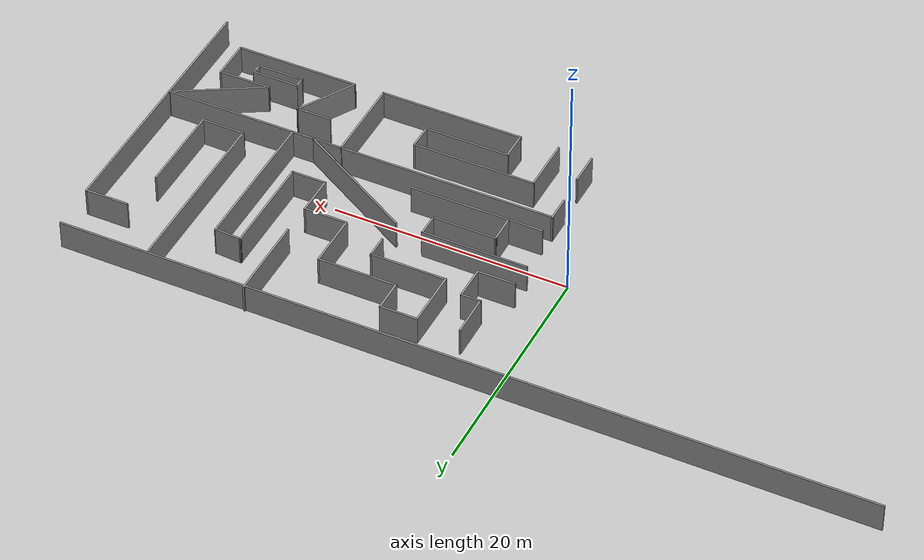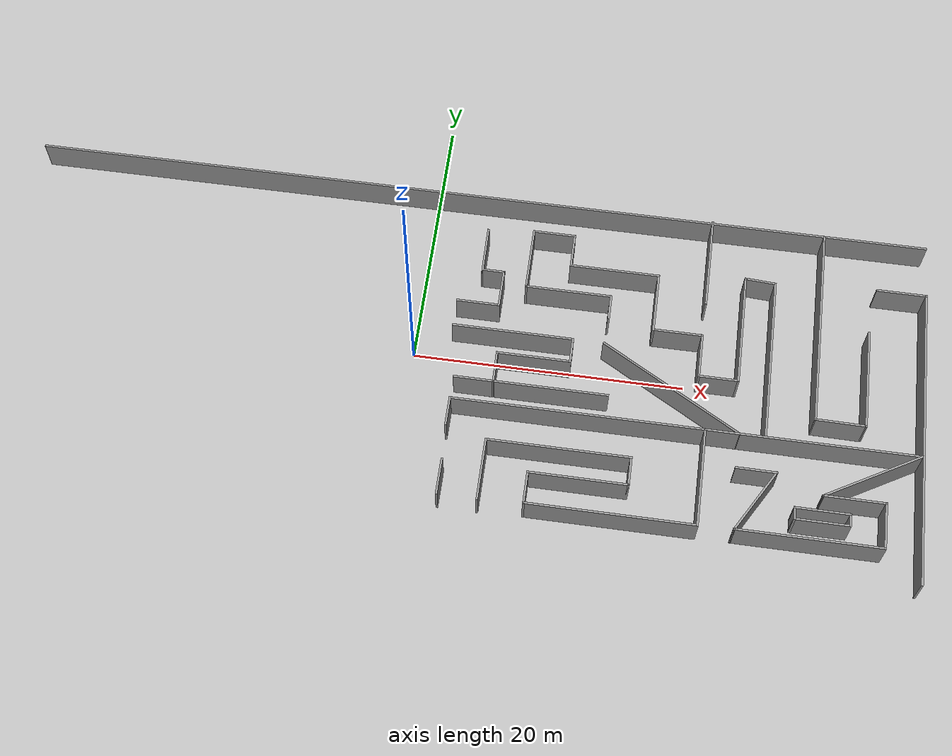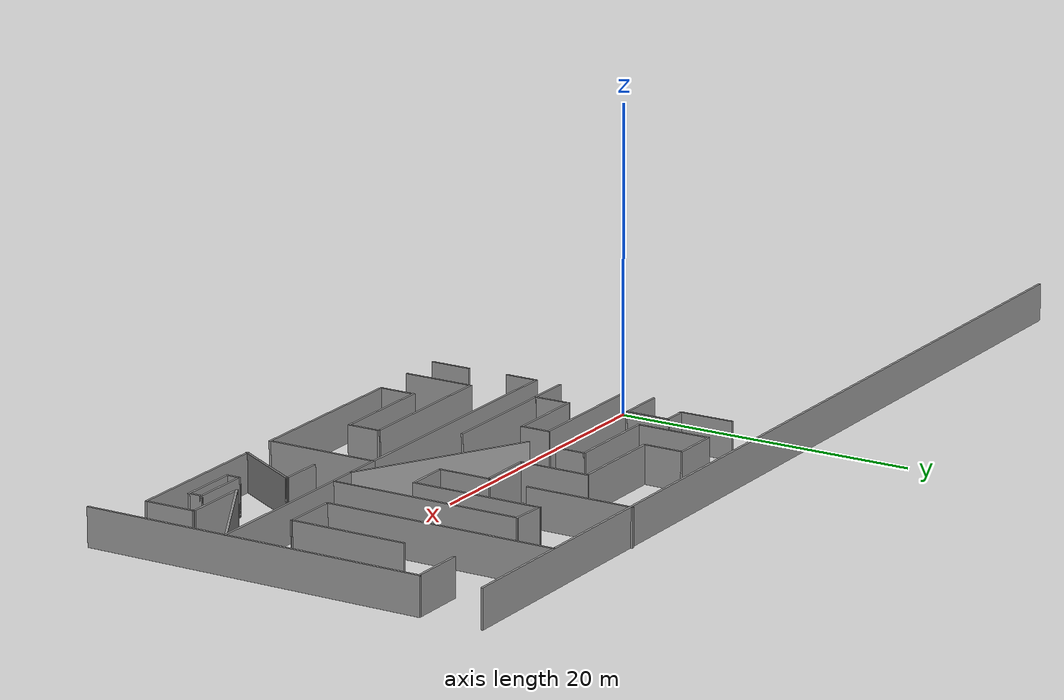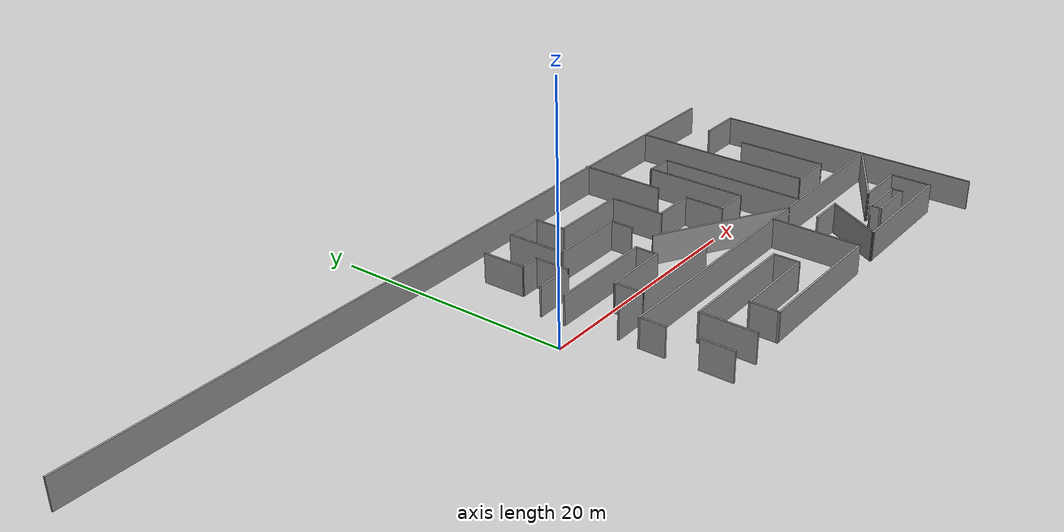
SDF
<sdf version="1.6">
 <model name="maze">
  <pose>0.673756 -0.372053 0 0 -0 0</pose>
  <link name="Wall_101">
   <collision name="Wall_101_Collision">
    <geometry><box><size>0.15 0.15 2.5</size></box></geometry>
    <pose>0 0 1.25 0 -0 0</pose>
   </collision>
   <visual name="Wall_101_Visual">
    <pose>0 0 1.25 0 -0 0</pose>
    <geometry><box><size>0.15 0.15 2.5</size></box></geometry>
    <material>
     <script><uri>file://media/materials/scripts/gazebo.material</uri><name>Gazebo/Grey</name></script>
     <ambient>1 1 1 1</ambient>
    </material>
   </visual>
   <pose>27.6431 -9.00348 0 0 -0 0</pose>
  </link>
  <link name="Wall_108">
   <collision name="Wall_108_Collision">
    <geometry><box><size>4 0.15 2.5</size></box></geometry>
    <pose>0 0 1.25 0 -0 0</pose>
   </collision>
   <visual name="Wall_108_Visual">
    <pose>0 0 1.25 0 -0 0</pose>
    <geometry><box><size>4 0.15 2.5</size></box></geometry>
    <material>
     <script><uri>file://media/materials/scripts/gazebo.material</uri><name>Gazebo/Grey</name></script>
     <ambient>1 1 1 1</ambient>
    </material>
   </visual>
   <pose>29.5681 -9.00348 0 0 -0 0</pose>
  </link>
  <link name="Wall_109">
   <collision name="Wall_109_Collision">
    <geometry><box><size>1 0.15 2.5</size></box></geometry>
    <pose>0 0 1.25 0 -0 0</pose>
   </collision>
   <visual name="Wall_109_Visual">
    <pose>0 0 1.25 0 -0 0</pose>
    <geometry><box><size>1 0.15 2.5</size></box></geometry>
    <material>
     <script><uri>file://media/materials/scripts/gazebo.material</uri><name>Gazebo/Grey</name></script>
     <ambient>1 1 1 1</ambient>
    </material>
   </visual>
   <pose>31.4931 -9.42848 0 0 0 -1.5708</pose>
  </link>
  <link name="Wall_110">
   <collision name="Wall_110_Collision">
    <geometry><box><size>4 0.15 2.5</size></box></geometry>
    <pose>0 0 1.25 0 -0 0</pose>
   </collision>
   <visual name="Wall_110_Visual">
    <pose>0 0 1.25 0 -0 0</pose>
    <geometry><box><size>4 0.15 2.5</size></box></geometry>
    <material>
     <script><uri>file://media/materials/scripts/gazebo.material</uri><name>Gazebo/Grey</name></script>
     <ambient>1 1 1 1</ambient>
    </material>
   </visual>
   <pose>29.5681 -9.85348 0 0 -0 3.14159</pose>
  </link>
  <link name="Wall_111">
   <collision name="Wall_111_Collision">
    <geometry><box><size>1 0.15 2.5</size></box></geometry>
    <pose>0 0 1.25 0 -0 0</pose>
   </collision>
   <visual name="Wall_111_Visual">
    <pose>0 0 1.25 0 -0 0</pose>
    <geometry><box><size>1 0.15 2.5</size></box></geometry>
    <material>
     <script><uri>file://media/materials/scripts/gazebo.material</uri><name>Gazebo/Grey</name></script>
     <ambient>1 1 1 1</ambient>
    </material>
   </visual>
   <pose>27.6431 -9.42848 0 0 -0 1.5708</pose>
  </link>
  <link name="Wall_124">
   <collision name="Wall_124_Collision">
    <geometry><box><size>3.64965 0.15 2.5</size></box></geometry>
    <pose>0 0 1.25 0 -0 0</pose>
   </collision>
   <visual name="Wall_124_Visual">
    <pose>0 0 1.25 0 -0 0</pose>
    <geometry><box><size>3.64965 0.15 2.5</size></box></geometry>
    <material>
     <script><uri>file://media/materials/scripts/gazebo.material</uri><name>Gazebo/Grey</name></script>
     <ambient>1 1 1 1</ambient>
    </material>
   </visual>
   <pose>3.52079 8.72354 0 0 0 -1.56012</pose>
  </link>
  <link name="Wall_125">
   <collision name="Wall_125_Collision">
    <geometry><box><size>1.75 0.15 2.5</size></box></geometry>
    <pose>0 0 1.25 0 -0 0</pose>
   </collision>
   <visual name="Wall_125_Visual">
    <pose>0 0 1.25 0 -0 0</pose>
    <geometry><box><size>1.75 0.15 2.5</size></box></geometry>
    <material>
     <script><uri>file://media/materials/scripts/gazebo.material</uri><name>Gazebo/Grey</name></script>
     <ambient>1 1 1 1</ambient>
    </material>
   </visual>
   <pose>4.33947 6.97382 0 0 -0 0</pose>
  </link>
  <link name="Wall_126">
   <collision name="Wall_126_Collision">
    <geometry><box><size>3 0.15 2.5</size></box></geometry>
    <pose>0 0 1.25 0 -0 0</pose>
   </collision>
   <visual name="Wall_126_Visual">
    <pose>0 0 1.25 0 -0 0</pose>
    <geometry><box><size>3 0.15 2.5</size></box></geometry>
    <material>
     <script><uri>file://media/materials/scripts/gazebo.material</uri><name>Gazebo/Grey</name></script>
     <ambient>1 1 1 1</ambient>
    </material>
   </visual>
   <pose>5.13947 5.54882 0 0 0 -1.5708</pose>
  </link>
  <link name="Wall_127">
   <collision name="Wall_127_Collision">
    <geometry><box><size>3.25 0.15 2.5</size></box></geometry>
    <pose>0 0 1.25 0 -0 0</pose>
   </collision>
   <visual name="Wall_127_Visual">
    <pose>0 0 1.25 0 -0 0</pose>
    <geometry><box><size>3.25 0.15 2.5</size></box></geometry>
    <material>
     <script><uri>file://media/materials/scripts/gazebo.material</uri><name>Gazebo/Grey</name></script>
     <ambient>1 1 1 1</ambient>
    </material>
   </visual>
   <pose>3.58947 4.12382 0 0 -0 3.14159</pose>
  </link>
  <link name="Wall_129">
   <collision name="Wall_129_Collision">
    <geometry><box><size>9 0.15 2.5</size></box></geometry>
    <pose>0 0 1.25 0 -0 0</pose>
   </collision>
   <visual name="Wall_129_Visual">
    <pose>0 0 1.25 0 -0 0</pose>
    <geometry><box><size>9 0.15 2.5</size></box></geometry>
    <material>
     <script><uri>file://media/materials/scripts/gazebo.material</uri><name>Gazebo/Grey</name></script>
     <ambient>1 1 1 1</ambient>
    </material>
   </visual>
   <pose>6.46447 2.02382 0 0 -0 0</pose>
  </link>
  <link name="Wall_130">
   <collision name="Wall_130_Collision">
    <geometry><box><size>2 0.15 2.5</size></box></geometry>
    <pose>0 0 1.25 0 -0 0</pose>
   </collision>
   <visual name="Wall_130_Visual">
    <pose>0 0 1.25 0 -0 0</pose>
    <geometry><box><size>2 0.15 2.5</size></box></geometry>
    <material>
     <script><uri>file://media/materials/scripts/gazebo.material</uri><name>Gazebo/Grey</name></script>
     <ambient>1 1 1 1</ambient>
    </material>
   </visual>
   <pose>10.8895 1.09882 0 0 0 -1.5708</pose>
  </link>
  <link name="Wall_131">
   <collision name="Wall_131_Collision">
    <geometry><box><size>5.5 0.15 2.5</size></box></geometry>
    <pose>0 0 1.25 0 -0 0</pose>
   </collision>
   <visual name="Wall_131_Visual">
    <pose>0 0 1.25 0 -0 0</pose>
    <geometry><box><size>5.5 0.15 2.5</size></box></geometry>
    <material>
     <script><uri>file://media/materials/scripts/gazebo.material</uri><name>Gazebo/Grey</name></script>
     <ambient>1 1 1 1</ambient>
    </material>
   </visual>
   <pose>8.21447 0.173816 0 0 -0 3.14159</pose>
  </link>
  <link name="Wall_132">
   <collision name="Wall_132_Collision">
    <geometry><box><size>2.50126 0.15 2.5</size></box></geometry>
    <pose>0 0 1.25 0 -0 0</pose>
   </collision>
   <visual name="Wall_132_Visual">
    <pose>0 0 1.25 0 -0 0</pose>
    <geometry><box><size>2.50126 0.15 2.5</size></box></geometry>
    <material>
     <script><uri>file://media/materials/scripts/gazebo.material</uri><name>Gazebo/Grey</name></script>
     <ambient>1 1 1 1</ambient>
    </material>
   </visual>
   <pose>5.55875 -1.00118 0 0 0 -1.55439</pose>
  </link>
  <link name="Wall_133">
   <collision name="Wall_133_Collision">
    <geometry><box><size>8.46145 0.15 2.5</size></box></geometry>
    <pose>0 0 1.25 0 -0 0</pose>
   </collision>
   <visual name="Wall_133_Visual">
    <pose>0 0 1.25 0 -0 0</pose>
    <geometry><box><size>8.46145 0.15 2.5</size></box></geometry>
    <material>
     <script><uri>file://media/materials/scripts/gazebo.material</uri><name>Gazebo/Grey</name></script>
     <ambient>1 1 1 1</ambient>
    </material>
   </visual>
   <pose>9.73375 -2.17618 0 0 -0 0</pose>
  </link>
  <link name="Wall_151">
   <collision name="Wall_151_Collision">
    <geometry><box><size>2.75 0.15 2.5</size></box></geometry>
    <pose>0 0 1.25 0 -0 0</pose>
   </collision>
   <visual name="Wall_151_Visual">
    <pose>0 0 1.25 0 -0 0</pose>
    <geometry><box><size>2.75 0.15 2.5</size></box></geometry>
    <material>
     <script><uri>file://media/materials/scripts/gazebo.material</uri><name>Gazebo/Grey</name></script>
     <ambient>1 1 1 1</ambient>
    </material>
   </visual>
   <pose>2.81078 -10.0807 0 0 0 -1.5708</pose>
  </link>
  <link name="Wall_159">
   <collision name="Wall_159_Collision">
    <geometry><box><size>12 0.15 2.5</size></box></geometry>
    <pose>0 0 1.25 0 -0 0</pose>
   </collision>
   <visual name="Wall_159_Visual">
    <pose>0 0 1.25 0 -0 0</pose>
    <geometry><box><size>12 0.15 2.5</size></box></geometry>
    <material>
     <script><uri>file://media/materials/scripts/gazebo.material</uri><name>Gazebo/Grey</name></script>
     <ambient>1 1 1 1</ambient>
    </material>
   </visual>
   <pose>18.3267 -0.947598 0 0 0 -0.523599</pose>
  </link>
  <link name="Wall_167">
   <collision name="Wall_167_Collision">
    <geometry><box><size>3 0.15 2.5</size></box></geometry>
    <pose>0 0 1.25 0 -0 0</pose>
   </collision>
   <visual name="Wall_167_Visual">
    <pose>0 0 1.25 0 -0 0</pose>
    <geometry><box><size>3 0.15 2.5</size></box></geometry>
    <material>
     <script><uri>file://media/materials/scripts/gazebo.material</uri><name>Gazebo/Grey</name></script>
     <ambient>1 1 1 1</ambient>
    </material>
   </visual>
   <pose>4.15302 -2.17618 0 0 -0 3.14159</pose>
  </link>
  <link name="Wall_183">
   <collision name="Wall_183_Collision">
    <geometry><box><size>12.75 0.15 2.5</size></box></geometry>
    <pose>0 0 1.25 0 -0 0</pose>
   </collision>
   <visual name="Wall_183_Visual">
    <pose>0 0 1.25 0 -0 0</pose>
    <geometry><box><size>12.75 0.15 2.5</size></box></geometry>
    <material>
     <script><uri>file://media/materials/scripts/gazebo.material</uri><name>Gazebo/Grey</name></script>
     <ambient>1 1 1 1</ambient>
    </material>
   </visual>
   <pose>25.3105 2.45804 0 0 -0 1.5708</pose>
  </link>
  <link name="Wall_185">
   <collision name="Wall_185_Collision">
    <geometry><box><size>15.5 0.15 2.5</size></box></geometry>
    <pose>0 0 1.25 0 -0 0</pose>
   </collision>
   <visual name="Wall_185_Visual">
    <pose>0 0 1.25 0 -0 0</pose>
    <geometry><box><size>15.5 0.15 2.5</size></box></geometry>
    <material>
     <script><uri>file://media/materials/scripts/gazebo.material</uri><name>Gazebo/Grey</name></script>
     <ambient>1 1 1 1</ambient>
    </material>
   </visual>
   <pose>28.7569 5.64093 0 0 0 -1.5708</pose>
  </link>
  <link name="Wall_186">
   <collision name="Wall_186_Collision">
    <geometry><box><size>3.75 0.15 2.5</size></box></geometry>
    <pose>0 0 1.25 0 -0 0</pose>
   </collision>
   <visual name="Wall_186_Visual">
    <pose>0 0 1.25 0 -0 0</pose>
    <geometry><box><size>3.75 0.15 2.5</size></box></geometry>
    <material>
     <script><uri>file://media/materials/scripts/gazebo.material</uri><name>Gazebo/Grey</name></script>
     <ambient>1 1 1 1</ambient>
    </material>
   </visual>
   <pose>30.5569 -2.0526 0 0 0 -0.010294</pose>
  </link>
  <link name="Wall_189">
   <collision name="Wall_189_Collision">
    <geometry><box><size>3.75 0.15 2.5</size></box></geometry>
    <pose>0 0 1.25 0 -0 0</pose>
   </collision>
   <visual name="Wall_189_Visual">
    <pose>0 0 1.25 0 -0 0</pose>
    <geometry><box><size>3.75 0.15 2.5</size></box></geometry>
    <material>
     <script><uri>file://media/materials/scripts/gazebo.material</uri><name>Gazebo/Grey</name></script>
     <ambient>1 1 1 1</ambient>
    </material>
   </visual>
   <pose>34.6633 9.24997 0 0 -0 3.14159</pose>
  </link>
  <link name="Wall_191">
   <collision name="Wall_191_Collision">
    <geometry><box><size>7.75 0.15 2.5</size></box></geometry>
    <pose>0 0 1.25 0 -0 0</pose>
   </collision>
   <visual name="Wall_191_Visual">
    <pose>0 0 1.25 0 -0 0</pose>
    <geometry><box><size>7.75 0.15 2.5</size></box></geometry>
    <material>
     <script><uri>file://media/materials/scripts/gazebo.material</uri><name>Gazebo/Grey</name></script>
     <ambient>1 1 1 1</ambient>
    </material>
   </visual>
   <pose>32.3569 1.72887 0 0 -0 1.5708</pose>
  </link>
  <link name="Wall_197">
   <collision name="Wall_197_Collision">
    <geometry><box><size>2 0.15 2.5</size></box></geometry>
    <pose>0 0 1.25 0 -0 0</pose>
   </collision>
   <visual name="Wall_197_Visual">
    <pose>0 0 1.25 0 -0 0</pose>
    <geometry><box><size>2 0.15 2.5</size></box></geometry>
    <material>
     <script><uri>file://media/materials/scripts/gazebo.material</uri><name>Gazebo/Grey</name></script>
     <ambient>1 1 1 1</ambient>
    </material>
   </visual>
   <pose>13.2968 5.06398 0 0 -0 1.5708</pose>
  </link>
  <link name="Wall_198">
   <collision name="Wall_198_Collision">
    <geometry><box><size>6.5 0.15 2.5</size></box></geometry>
    <pose>0 0 1.25 0 -0 0</pose>
   </collision>
   <visual name="Wall_198_Visual">
    <pose>0 0 1.25 0 -0 0</pose>
    <geometry><box><size>6.5 0.15 2.5</size></box></geometry>
    <material>
     <script><uri>file://media/materials/scripts/gazebo.material</uri><name>Gazebo/Grey</name></script>
     <ambient>1 1 1 1</ambient>
    </material>
   </visual>
   <pose>10.1218 5.98898 0 0 -0 3.14159</pose>
  </link>
  <link name="Wall_199">
   <collision name="Wall_199_Collision">
    <geometry><box><size>5 0.15 2.5</size></box></geometry>
    <pose>0 0 1.25 0 -0 0</pose>
   </collision>
   <visual name="Wall_199_Visual">
    <pose>0 0 1.25 0 -0 0</pose>
    <geometry><box><size>5 0.15 2.5</size></box></geometry>
    <material>
     <script><uri>file://media/materials/scripts/gazebo.material</uri><name>Gazebo/Grey</name></script>
     <ambient>1 1 1 1</ambient>
    </material>
   </visual>
   <pose>6.94681 8.41398 0 0 -0 1.5708</pose>
  </link>
  <link name="Wall_200">
   <collision name="Wall_200_Collision">
    <geometry><box><size>3.25 0.15 2.5</size></box></geometry>
    <pose>0 0 1.25 0 -0 0</pose>
   </collision>
   <visual name="Wall_200_Visual">
    <pose>0 0 1.25 0 -0 0</pose>
    <geometry><box><size>3.25 0.15 2.5</size></box></geometry>
    <material>
     <script><uri>file://media/materials/scripts/gazebo.material</uri><name>Gazebo/Grey</name></script>
     <ambient>1 1 1 1</ambient>
    </material>
   </visual>
   <pose>8.49681 10.839 0 0 -0 0</pose>
  </link>
  <link name="Wall_201">
   <collision name="Wall_201_Collision">
    <geometry><box><size>2.75 0.15 2.5</size></box></geometry>
    <pose>0 0 1.25 0 -0 0</pose>
   </collision>
   <visual name="Wall_201_Visual">
    <pose>0 0 1.25 0 -0 0</pose>
    <geometry><box><size>2.75 0.15 2.5</size></box></geometry>
    <material>
     <script><uri>file://media/materials/scripts/gazebo.material</uri><name>Gazebo/Grey</name></script>
     <ambient>1 1 1 1</ambient>
    </material>
   </visual>
   <pose>10.0468 9.53898 0 0 0 -1.5708</pose>
  </link>
  <link name="Wall_202">
   <collision name="Wall_202_Collision">
    <geometry><box><size>6.75 0.15 2.5</size></box></geometry>
    <pose>0 0 1.25 0 -0 0</pose>
   </collision>
   <visual name="Wall_202_Visual">
    <pose>0 0 1.25 0 -0 0</pose>
    <geometry><box><size>6.75 0.15 2.5</size></box></geometry>
    <material>
     <script><uri>file://media/materials/scripts/gazebo.material</uri><name>Gazebo/Grey</name></script>
     <ambient>1 1 1 1</ambient>
    </material>
   </visual>
   <pose>13.3468 8.23898 0 0 -0 0</pose>
  </link>
  <link name="Wall_203">
   <collision name="Wall_203_Collision">
    <geometry><box><size>4.75 0.15 2.5</size></box></geometry>
    <pose>0 0 1.25 0 -0 0</pose>
   </collision>
   <visual name="Wall_203_Visual">
    <pose>0 0 1.25 0 -0 0</pose>
    <geometry><box><size>4.75 0.15 2.5</size></box></geometry>
    <material>
     <script><uri>file://media/materials/scripts/gazebo.material</uri><name>Gazebo/Grey</name></script>
     <ambient>1 1 1 1</ambient>
    </material>
   </visual>
   <pose>16.6468 5.93898 0 0 0 -1.5708</pose>
  </link>
  <link name="Wall_204">
   <collision name="Wall_204_Collision">
    <geometry><box><size>3.75 0.15 2.5</size></box></geometry>
    <pose>0 0 1.25 0 -0 0</pose>
   </collision>
   <visual name="Wall_204_Visual">
    <pose>0 0 1.25 0 -0 0</pose>
    <geometry><box><size>3.75 0.15 2.5</size></box></geometry>
    <material>
     <script><uri>file://media/materials/scripts/gazebo.material</uri><name>Gazebo/Grey</name></script>
     <ambient>1 1 1 1</ambient>
    </material>
   </visual>
   <pose>18.4468 3.63898 0 0 -0 0</pose>
  </link>
  <link name="Wall_205">
   <collision name="Wall_205_Collision">
    <geometry><box><size>3.5 0.15 2.5</size></box></geometry>
    <pose>0 0 1.25 0 -0 0</pose>
   </collision>
   <visual name="Wall_205_Visual">
    <pose>0 0 1.25 0 -0 0</pose>
    <geometry><box><size>3.5 0.15 2.5</size></box></geometry>
    <material>
     <script><uri>file://media/materials/scripts/gazebo.material</uri><name>Gazebo/Grey</name></script>
     <ambient>1 1 1 1</ambient>
    </material>
   </visual>
   <pose>20.2468 1.96398 0 0 0 -1.5708</pose>
  </link>
  <link name="Wall_206">
   <collision name="Wall_206_Collision">
    <geometry><box><size>3 0.15 2.5</size></box></geometry>
    <pose>0 0 1.25 0 -0 0</pose>
   </collision>
   <visual name="Wall_206_Visual">
    <pose>0 0 1.25 0 -0 0</pose>
    <geometry><box><size>3 0.15 2.5</size></box></geometry>
    <material>
     <script><uri>file://media/materials/scripts/gazebo.material</uri><name>Gazebo/Grey</name></script>
     <ambient>1 1 1 1</ambient>
    </material>
   </visual>
   <pose>21.6718 0.288983 0 0 -0 0</pose>
  </link>
  <link name="Wall_207">
   <collision name="Wall_207_Collision">
    <geometry><box><size>8.75 0.15 2.5</size></box></geometry>
    <pose>0 0 1.25 0 -0 0</pose>
   </collision>
   <visual name="Wall_207_Visual">
    <pose>0 0 1.25 0 -0 0</pose>
    <geometry><box><size>8.75 0.15 2.5</size></box></geometry>
    <material>
     <script><uri>file://media/materials/scripts/gazebo.material</uri><name>Gazebo/Grey</name></script>
     <ambient>1 1 1 1</ambient>
    </material>
   </visual>
   <pose>23.0968 4.58898 0 0 -0 1.5708</pose>
  </link>
  <link name="Wall_211">
   <collision name="Wall_211_Collision">
    <geometry><box><size>2.36759 0.15 2.5</size></box></geometry>
    <pose>0 0 1.25 0 -0 0</pose>
   </collision>
   <visual name="Wall_211_Visual">
    <pose>0 0 1.25 0 -0 0</pose>
    <geometry><box><size>2.36759 0.15 2.5</size></box></geometry>
    <material>
     <script><uri>file://media/materials/scripts/gazebo.material</uri><name>Gazebo/Grey</name></script>
     <ambient>1 1 1 1</ambient>
    </material>
   </visual>
   <pose>24.2037 8.82351 0 0 0 -0.059081</pose>
  </link>
  <link name="Wall_213">
   <collision name="Wall_213_Collision">
    <geometry><box><size>7.25 0.15 2.5</size></box></geometry>
    <pose>0 0 1.25 0 -0 0</pose>
   </collision>
   <visual name="Wall_213_Visual">
    <pose>0 0 1.25 0 -0 0</pose>
    <geometry><box><size>7.25 0.15 2.5</size></box></geometry>
    <material>
     <script><uri>file://media/materials/scripts/gazebo.material</uri><name>Gazebo/Grey</name></script>
     <ambient>1 1 1 1</ambient>
    </material>
   </visual>
   <pose>20.3052 9.93734 0 0 0 -1.5708</pose>
  </link>
  <link name="Wall_5">
   <collision name="Wall_5_Collision">
    <geometry><box><size>68.25 0.15 2.5</size></box></geometry>
    <pose>0 0 1.25 0 -0 0</pose>
   </collision>
   <visual name="Wall_5_Visual">
    <pose>0 0 1.25 0 -0 0</pose>
    <geometry><box><size>68.25 0.15 2.5</size></box></geometry>
    <material>
     <script><uri>file://media/materials/scripts/gazebo.material</uri><name>Gazebo/Grey</name></script>
     <ambient>1 1 1 1</ambient>
    </material>
   </visual>
   <pose>2.31078 13.3693 0 0 -0 0</pose>
  </link>
  <link name="Wall_59">
   <collision name="Wall_59_Collision">
    <geometry><box><size>2.25 0.15 2.5</size></box></geometry>
    <pose>0 0 1.25 0 -0 0</pose>
   </collision>
   <visual name="Wall_59_Visual">
    <pose>0 0 1.25 0 -0 0</pose>
    <geometry><box><size>2.25 0.15 2.5</size></box></geometry>
    <material>
     <script><uri>file://media/materials/scripts/gazebo.material</uri><name>Gazebo/Grey</name></script>
     <ambient>1 1 1 1</ambient>
    </material>
   </visual>
   <pose>2.67414 -4.96437 0 0 -0 1.5708</pose>
  </link>
  <link name="Wall_60">
   <collision name="Wall_60_Collision">
    <geometry><box><size>18.5 0.15 2.5</size></box></geometry>
    <pose>0 0 1.25 0 -0 0</pose>
   </collision>
   <visual name="Wall_60_Visual">
    <pose>0 0 1.25 0 -0 0</pose>
    <geometry><box><size>18.5 0.15 2.5</size></box></geometry>
    <material>
     <script><uri>file://media/materials/scripts/gazebo.material</uri><name>Gazebo/Grey</name></script>
     <ambient>1 1 1 1</ambient>
    </material>
   </visual>
   <pose>11.8491 -3.91437 0 0 -0 0</pose>
  </link>
  <link name="Wall_63">
   <collision name="Wall_63_Collision">
    <geometry><box><size>7.5 0.15 2.5</size></box></geometry>
    <pose>0 0 1.25 0 -0 0</pose>
   </collision>
   <visual name="Wall_63_Visual">
    <pose>0 0 1.25 0 -0 0</pose>
    <geometry><box><size>7.5 0.15 2.5</size></box></geometry>
    <material>
     <script><uri>file://media/materials/scripts/gazebo.material</uri><name>Gazebo/Grey</name></script>
     <ambient>1 1 1 1</ambient>
    </material>
   </visual>
   <pose>21.0241 -7.58937 0 0 0 -1.5708</pose>
  </link>
  <link name="Wall_64">
   <collision name="Wall_64_Collision">
    <geometry><box><size>12.25 0.15 2.5</size></box></geometry>
    <pose>0 0 1.25 0 -0 0</pose>
   </collision>
   <visual name="Wall_64_Visual">
    <pose>0 0 1.25 0 -0 0</pose>
    <geometry><box><size>12.25 0.15 2.5</size></box></geometry>
    <material>
     <script><uri>file://media/materials/scripts/gazebo.material</uri><name>Gazebo/Grey</name></script>
     <ambient>1 1 1 1</ambient>
    </material>
   </visual>
   <pose>14.9741 -11.2644 0 0 -0 3.14159</pose>
  </link>
  <link name="Wall_65">
   <collision name="Wall_65_Collision">
    <geometry><box><size>2.5 0.15 2.5</size></box></geometry>
    <pose>0 0 1.25 0 -0 0</pose>
   </collision>
   <visual name="Wall_65_Visual">
    <pose>0 0 1.25 0 -0 0</pose>
    <geometry><box><size>2.5 0.15 2.5</size></box></geometry>
    <material>
     <script><uri>file://media/materials/scripts/gazebo.material</uri><name>Gazebo/Grey</name></script>
     <ambient>1 1 1 1</ambient>
    </material>
   </visual>
   <pose>8.92414 -10.0894 0 0 -0 1.5708</pose>
  </link>
  <link name="Wall_66">
   <collision name="Wall_66_Collision">
    <geometry><box><size>7.25 0.15 2.5</size></box></geometry>
    <pose>0 0 1.25 0 -0 0</pose>
   </collision>
   <visual name="Wall_66_Visual">
    <pose>0 0 1.25 0 -0 0</pose>
    <geometry><box><size>7.25 0.15 2.5</size></box></geometry>
    <material>
     <script><uri>file://media/materials/scripts/gazebo.material</uri><name>Gazebo/Grey</name></script>
     <ambient>1 1 1 1</ambient>
    </material>
   </visual>
   <pose>12.4741 -8.91437 0 0 -0 0</pose>
  </link>
  <link name="Wall_67">
   <collision name="Wall_67_Collision">
    <geometry><box><size>2.25 0.15 2.5</size></box></geometry>
    <pose>0 0 1.25 0 -0 0</pose>
   </collision>
   <visual name="Wall_67_Visual">
    <pose>0 0 1.25 0 -0 0</pose>
    <geometry><box><size>2.25 0.15 2.5</size></box></geometry>
    <material>
     <script><uri>file://media/materials/scripts/gazebo.material</uri><name>Gazebo/Grey</name></script>
     <ambient>1 1 1 1</ambient>
    </material>
   </visual>
   <pose>16.0241 -7.86437 0 0 -0 1.5708</pose>
  </link>
  <link name="Wall_68">
   <collision name="Wall_68_Collision">
    <geometry><box><size>10.5 0.15 2.5</size></box></geometry>
    <pose>0 0 1.25 0 -0 0</pose>
   </collision>
   <visual name="Wall_68_Visual">
    <pose>0 0 1.25 0 -0 0</pose>
    <geometry><box><size>10.5 0.15 2.5</size></box></geometry>
    <material>
     <script><uri>file://media/materials/scripts/gazebo.material</uri><name>Gazebo/Grey</name></script>
     <ambient>1 1 1 1</ambient>
    </material>
   </visual>
   <pose>10.8491 -6.81437 0 0 -0 3.14159</pose>
  </link>
  <link name="Wall_69">
   <collision name="Wall_69_Collision">
    <geometry><box><size>4.75 0.15 2.5</size></box></geometry>
    <pose>0 0 1.25 0 -0 0</pose>
   </collision>
   <visual name="Wall_69_Visual">
    <pose>0 0 1.25 0 -0 0</pose>
    <geometry><box><size>4.75 0.15 2.5</size></box></geometry>
    <material>
     <script><uri>file://media/materials/scripts/gazebo.material</uri><name>Gazebo/Grey</name></script>
     <ambient>1 1 1 1</ambient>
    </material>
   </visual>
   <pose>5.67414 -9.11437 0 0 0 -1.5708</pose>
  </link>
  <link name="Wall_7">
   <collision name="Wall_7_Collision">
    <geometry><box><size>22.8873 0.15 2.5</size></box></geometry>
    <pose>0 0 1.25 0 -0 0</pose>
   </collision>
   <visual name="Wall_7_Visual">
    <pose>0 0 1.25 0 -0 0</pose>
    <geometry><box><size>22.8873 0.15 2.5</size></box></geometry>
    <material>
     <script><uri>file://media/materials/scripts/gazebo.material</uri><name>Gazebo/Grey</name></script>
     <ambient>1 1 1 1</ambient>
    </material>
   </visual>
   <pose>36.4633 -2.11867 0 0 0 -1.5708</pose>
  </link>
  <link name="Wall_76">
   <collision name="Wall_76_Collision">
    <geometry><box><size>15.5 0.15 2.5</size></box></geometry>
    <pose>0 0 1.25 0 -0 0</pose>
   </collision>
   <visual name="Wall_76_Visual">
    <pose>0 0 1.25 0 -0 0</pose>
    <geometry><box><size>15.5 0.15 2.5</size></box></geometry>
    <material>
     <script><uri>file://media/materials/scripts/gazebo.material</uri><name>Gazebo/Grey</name></script>
     <ambient>1 1 1 1</ambient>
    </material>
   </visual>
   <pose>28.6991 -3.91437 0 0 -0 0</pose>
  </link>
  <link name="Wall_77">
   <collision name="Wall_77_Collision">
    <geometry><box><size>8 0.15 2.5</size></box></geometry>
    <pose>0 0 1.25 0 -0 0</pose>
   </collision>
   <visual name="Wall_77_Visual">
    <pose>0 0 1.25 0 -0 0</pose>
    <geometry><box><size>8 0.15 2.5</size></box></geometry>
    <material>
     <script><uri>file://media/materials/scripts/gazebo.material</uri><name>Gazebo/Grey</name></script>
     <ambient>1 1 1 1</ambient>
    </material>
   </visual>
   <pose>32.975 -5.87687 0 0 0 -2.61799</pose>
  </link>
  <link name="Wall_78">
   <collision name="Wall_78_Collision">
    <geometry><box><size>4.5 0.15 2.5</size></box></geometry>
    <pose>0 0 1.25 0 -0 0</pose>
   </collision>
   <visual name="Wall_78_Visual">
    <pose>0 0 1.25 0 -0 0</pose>
    <geometry><box><size>4.5 0.15 2.5</size></box></geometry>
    <material>
     <script><uri>file://media/materials/scripts/gazebo.material</uri><name>Gazebo/Grey</name></script>
     <ambient>1 1 1 1</ambient>
    </material>
   </visual>
   <pose>31.7508 -7.83937 0 0 -0 0</pose>
  </link>
  <link name="Wall_79">
   <collision name="Wall_79_Collision">
    <geometry><box><size>3.5 0.15 2.5</size></box></geometry>
    <pose>0 0 1.25 0 -0 0</pose>
   </collision>
   <visual name="Wall_79_Visual">
    <pose>0 0 1.25 0 -0 0</pose>
    <geometry><box><size>3.5 0.15 2.5</size></box></geometry>
    <material>
     <script><uri>file://media/materials/scripts/gazebo.material</uri><name>Gazebo/Grey</name></script>
     <ambient>1 1 1 1</ambient>
    </material>
   </visual>
   <pose>33.9258 -9.51437 0 0 0 -1.5708</pose>
  </link>
  <link name="Wall_80">
   <collision name="Wall_80_Collision">
    <geometry><box><size>10.5 0.15 2.5</size></box></geometry>
    <pose>0 0 1.25 0 -0 0</pose>
   </collision>
   <visual name="Wall_80_Visual">
    <pose>0 0 1.25 0 -0 0</pose>
    <geometry><box><size>10.5 0.15 2.5</size></box></geometry>
    <material>
     <script><uri>file://media/materials/scripts/gazebo.material</uri><name>Gazebo/Grey</name></script>
     <ambient>1 1 1 1</ambient>
    </material>
   </visual>
   <pose>28.7508 -11.1894 0 0 -0 3.14159</pose>
  </link>
  <link name="Wall_81">
   <collision name="Wall_81_Collision">
    <geometry><box><size>5.5 0.15 2.5</size></box></geometry>
    <pose>0 0 1.25 0 -0 0</pose>
   </collision>
   <visual name="Wall_81_Visual">
    <pose>0 0 1.25 0 -0 0</pose>
    <geometry><box><size>5.5 0.15 2.5</size></box></geometry>
    <material>
     <script><uri>file://media/materials/scripts/gazebo.material</uri><name>Gazebo/Grey</name></script>
     <ambient>1 1 1 1</ambient>
    </material>
   </visual>
   <pose>24.9133 -8.87275 0 0 -0 1.0472</pose>
  </link>
  <link name="Wall_83">
   <collision name="Wall_83_Collision">
    <geometry><box><size>3 0.15 2.5</size></box></geometry>
    <pose>0 0 1.25 0 -0 0</pose>
   </collision>
   <visual name="Wall_83_Visual">
    <pose>0 0 1.25 0 -0 0</pose>
    <geometry><box><size>3 0.15 2.5</size></box></geometry>
    <material>
     <script><uri>file://media/materials/scripts/gazebo.material</uri><name>Gazebo/Grey</name></script>
     <ambient>1 1 1 1</ambient>
    </material>
   </visual>
   <pose>24.8258 -6.55613 0 0 -0 3.14159</pose>
  </link>
  <static>1</static>
 </model>
</sdf>
